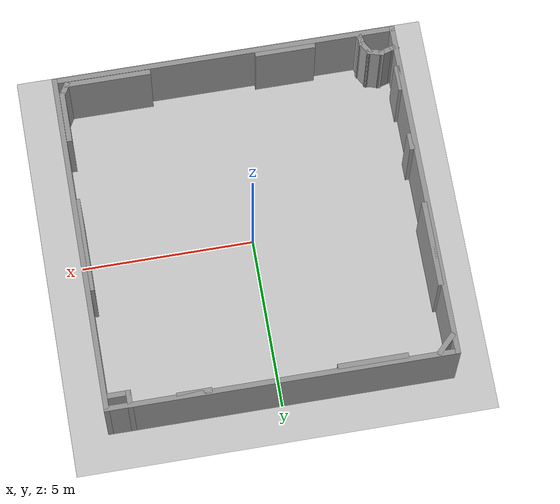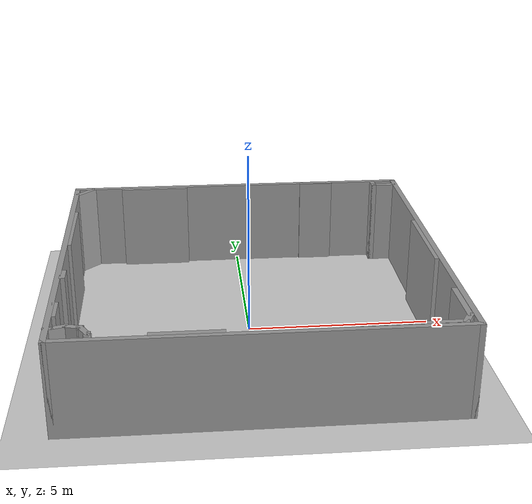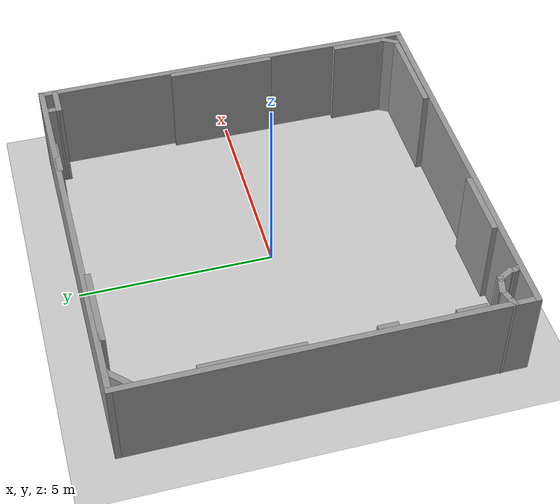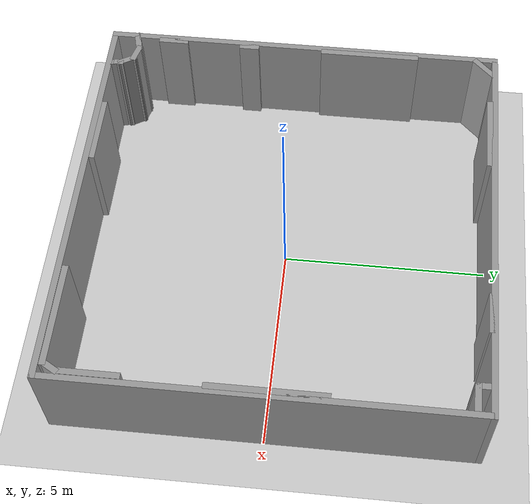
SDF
<sdf version="1.6">
 <world name="default">
  <light name="sun" type="directional">
   <pose>0 0 10 0 -0 0</pose>
   <diffuse>0.8 0.8 0.8 1</diffuse>
   <specular>0.2 0.2 0.2 1</specular>
   <attenuation>
    <range>1000</range>
    <constant>0.9</constant>
    <linear>0.01</linear>
    <quadratic>0.001</quadratic>
   </attenuation>
   <direction>-0.5 0.1 -0.9</direction>
  </light>
  <model name="ground_plane">
   <static>1</static>
   <link name="link">
    <collision name="collision">
     <geometry><plane><normal>0 0 1</normal><size>100 100</size></plane></geometry>
     <surface><friction><ode><mu>100</mu><mu2>50</mu2></ode></friction></surface>
    </collision>
    <visual name="visual">
     <cast_shadows>0</cast_shadows>
     <geometry><plane><normal>0 0 1</normal><size>100 100</size></plane></geometry>
     <material>
      <script><uri>file://media/materials/scripts/gazebo.material</uri><name>Gazebo/Grey</name></script>
     </material>
    </visual>
   </link>
  </model>
  <gravity>0 0 -9.8</gravity>
  <magnetic_field>6e-06 2.3e-05 -4.2e-05</magnetic_field>
  <atmosphere type="adiabatic"/>
  <physics name="default_physics" default="0" type="ode">
   <max_step_size>0.001</max_step_size>
   <real_time_factor>1</real_time_factor>
   <real_time_update_rate>1000</real_time_update_rate>
  </physics>
  <scene><ambient>0.4 0.4 0.4 1</ambient><background>0.7 0.7 0.7 1</background><shadows>1</shadows></scene>
  <spherical_coordinates>
   <surface_model>EARTH_WGS84</surface_model>
   <latitude_deg>0</latitude_deg>
   <longitude_deg>0</longitude_deg>
   <elevation>0</elevation>
   <heading_deg>0</heading_deg>
  </spherical_coordinates>
  <model name="10_4_ractangle">
   <link name="Wall_1">
    <collision name="Wall_1_Collision">
     <geometry><box><size>10 0.15 2.5</size></box></geometry>
     <pose>0 0 1.25 0 -0 0</pose>
    </collision>
    <visual name="Wall_1_Visual">
     <pose>0 0 1.25 0 -0 0</pose>
     <geometry><box><size>10 0.15 2.5</size></box></geometry>
     <material>
      <script><uri>file://media/materials/scripts/gazebo.material</uri><name>Gazebo/Grey</name></script>
      <ambient>1 1 1 1</ambient>
     </material>
     <meta><layer>0</layer></meta>
    </visual>
    <pose>-4.91657 0 0 0 -0 -1.5708</pose>
   </link>
   <link name="Wall_10">
    <collision name="Wall_10_Collision">
     <geometry><box><size>0.75 0.15 2.5</size></box></geometry>
     <pose>0 0 1.25 0 -0 0</pose>
    </collision>
    <visual name="Wall_10_Visual">
     <pose>0 0 1.25 0 -0 0</pose>
     <geometry><box><size>0.75 0.15 2.5</size></box></geometry>
     <material>
      <script><uri>file://media/materials/scripts/gazebo.material</uri><name>Gazebo/Grey</name></script>
      <ambient>1 1 1 1</ambient>
     </material>
     <meta><layer>0</layer></meta>
    </visual>
    <pose>4.56628 4.575 0 0 -0 0</pose>
   </link>
   <link name="Wall_12">
    <collision name="Wall_12_Collision">
     <geometry><box><size>0.25 0.15 2.5</size></box></geometry>
     <pose>0 0 1.25 0 -0 0</pose>
    </collision>
    <visual name="Wall_12_Visual">
     <pose>0 0 1.25 0 -0 0</pose>
     <geometry><box><size>0.25 0.15 2.5</size></box></geometry>
     <material>
      <script><uri>file://media/materials/scripts/gazebo.material</uri><name>Gazebo/Grey</name></script>
      <ambient>1 1 1 1</ambient>
     </material>
     <meta><layer>0</layer></meta>
    </visual>
    <pose>-4.86828 -4.33743 0 0 -0 0.261799</pose>
   </link>
   <link name="Wall_13">
    <collision name="Wall_13_Collision">
     <geometry><box><size>0.5 0.15 2.5</size></box></geometry>
     <pose>0 0 1.25 0 -0 0</pose>
    </collision>
    <visual name="Wall_13_Visual">
     <pose>0 0 1.25 0 -0 0</pose>
     <geometry><box><size>0.5 0.15 2.5</size></box></geometry>
     <material>
      <script><uri>file://media/materials/scripts/gazebo.material</uri><name>Gazebo/Grey</name></script>
      <ambient>1 1 1 1</ambient>
     </material>
     <meta><layer>0</layer></meta>
    </visual>
    <pose>-4.65094 -4.2792 0 0 -0 0.261799</pose>
   </link>
   <link name="Wall_14">
    <collision name="Wall_14_Collision">
     <geometry><box><size>0.5 0.15 2.5</size></box></geometry>
     <pose>0 0 1.25 0 -0 0</pose>
    </collision>
    <visual name="Wall_14_Visual">
     <pose>0 0 1.25 0 -0 0</pose>
     <geometry><box><size>0.5 0.15 2.5</size></box></geometry>
     <material>
      <script><uri>file://media/materials/scripts/gazebo.material</uri><name>Gazebo/Grey</name></script>
      <ambient>1 1 1 1</ambient>
     </material>
     <meta><layer>0</layer></meta>
    </visual>
    <pose>-4.31287 -4.2792 0 0 -0 -0.261799</pose>
   </link>
   <link name="Wall_15">
    <collision name="Wall_15_Collision">
     <geometry><box><size>0.15 0.15 2.5</size></box></geometry>
     <pose>0 0 1.25 0 -0 0</pose>
    </collision>
    <visual name="Wall_15_Visual">
     <pose>0 0 1.25 0 -0 0</pose>
     <geometry><box><size>0.15 0.15 2.5</size></box></geometry>
     <material>
      <script><uri>file://media/materials/scripts/gazebo.material</uri><name>Gazebo/Grey</name></script>
      <ambient>1 1 1 1</ambient>
     </material>
     <meta><layer>0</layer></meta>
    </visual>
    <pose>-4.14383 -4.32449 0 0 -0 0</pose>
   </link>
   <link name="Wall_16">
    <collision name="Wall_16_Collision">
     <geometry><box><size>0.5 0.15 2.5</size></box></geometry>
     <pose>0 0 1.25 0 -0 0</pose>
    </collision>
    <visual name="Wall_16_Visual">
     <pose>0 0 1.25 0 -0 0</pose>
     <geometry><box><size>0.5 0.15 2.5</size></box></geometry>
     <material>
      <script><uri>file://media/materials/scripts/gazebo.material</uri><name>Gazebo/Grey</name></script>
      <ambient>1 1 1 1</ambient>
     </material>
     <meta><layer>0</layer></meta>
    </visual>
    <pose>-4.05633 -4.47605 0 0 -0 -1.0472</pose>
   </link>
   <link name="Wall_18">
    <collision name="Wall_18_Collision">
     <geometry><box><size>0.25 0.15 2.5</size></box></geometry>
     <pose>0 0 1.25 0 -0 0</pose>
    </collision>
    <visual name="Wall_18_Visual">
     <pose>0 0 1.25 0 -0 0</pose>
     <geometry><box><size>0.25 0.15 2.5</size></box></geometry>
     <material>
      <script><uri>file://media/materials/scripts/gazebo.material</uri><name>Gazebo/Grey</name></script>
      <ambient>1 1 1 1</ambient>
     </material>
     <meta><layer>0</layer></meta>
    </visual>
    <pose>-3.96883 -4.6776 0 0 -0 -1.5708</pose>
   </link>
   <link name="Wall_2">
    <collision name="Wall_2_Collision">
     <geometry><box><size>10 0.15 2.5</size></box></geometry>
     <pose>0 0 1.25 0 -0 0</pose>
    </collision>
    <visual name="Wall_2_Visual">
     <pose>0 0 1.25 0 -0 0</pose>
     <geometry><box><size>10 0.15 2.5</size></box></geometry>
     <material>
      <script><uri>file://media/materials/scripts/gazebo.material</uri><name>Gazebo/Grey</name></script>
      <ambient>1 1 1 1</ambient>
     </material>
     <meta><layer>0</layer></meta>
    </visual>
    <pose>0.008427 -4.925 0 0 -0 0</pose>
   </link>
   <link name="Wall_20">
    <collision name="Wall_20_Collision">
     <geometry><box><size>0.25 0.15 2.5</size></box></geometry>
     <pose>0 0 1.25 0 -0 0</pose>
    </collision>
    <visual name="Wall_20_Visual">
     <pose>0 0 1.25 0 -0 0</pose>
     <geometry><box><size>0.25 0.15 2.5</size></box></geometry>
     <material>
      <script><uri>file://media/materials/scripts/gazebo.material</uri><name>Gazebo/Grey</name></script>
      <ambient>1 1 1 1</ambient>
     </material>
     <meta><layer>0</layer></meta>
    </visual>
    <pose>-3.96883 -4.6776 0 0 -0 -1.5708</pose>
   </link>
   <link name="Wall_21">
    <collision name="Wall_21_Collision">
     <geometry><box><size>0.25 0.15 2.5</size></box></geometry>
     <pose>0 0 1.25 0 -0 0</pose>
    </collision>
    <visual name="Wall_21_Visual">
     <pose>0 0 1.25 0 -0 0</pose>
     <geometry><box><size>0.25 0.15 2.5</size></box></geometry>
     <material>
      <script><uri>file://media/materials/scripts/gazebo.material</uri><name>Gazebo/Grey</name></script>
      <ambient>1 1 1 1</ambient>
     </material>
     <meta><layer>0</layer></meta>
    </visual>
    <pose>-3.95589 -4.7759 0 0 -0 -1.309</pose>
   </link>
   <link name="Wall_23">
    <collision name="Wall_23_Collision">
     <geometry><box><size>2.75 0.15 2.5</size></box></geometry>
     <pose>0 0 1.25 0 -0 0</pose>
    </collision>
    <visual name="Wall_23_Visual">
     <pose>0 0 1.25 0 -0 0</pose>
     <geometry><box><size>2.75 0.15 2.5</size></box></geometry>
     <material>
      <script><uri>file://media/materials/scripts/gazebo.material</uri><name>Gazebo/Grey</name></script>
      <ambient>1 1 1 1</ambient>
     </material>
     <meta><layer>0</layer></meta>
    </visual>
    <pose>4.82141 0.109148 0 0 -0 -1.5708</pose>
   </link>
   <link name="Wall_25">
    <collision name="Wall_25_Collision">
     <geometry><box><size>1 0.15 2.5</size></box></geometry>
     <pose>0 0 1.25 0 -0 0</pose>
    </collision>
    <visual name="Wall_25_Visual">
     <pose>0 0 1.25 0 -0 0</pose>
     <geometry><box><size>1 0.15 2.5</size></box></geometry>
     <material>
      <script><uri>file://media/materials/scripts/gazebo.material</uri><name>Gazebo/Grey</name></script>
      <ambient>1 1 1 1</ambient>
     </material>
     <meta><layer>0</layer></meta>
    </visual>
    <pose>2.47074 4.87874 0 0 -0 0</pose>
   </link>
   <link name="Wall_27">
    <collision name="Wall_27_Collision">
     <geometry><box><size>2 0.15 2.5</size></box></geometry>
     <pose>0 0 1.25 0 -0 0</pose>
    </collision>
    <visual name="Wall_27_Visual">
     <pose>0 0 1.25 0 -0 0</pose>
     <geometry><box><size>2 0.15 2.5</size></box></geometry>
     <material>
      <script><uri>file://media/materials/scripts/gazebo.material</uri><name>Gazebo/Grey</name></script>
      <ambient>1 1 1 1</ambient>
     </material>
     <meta><layer>0</layer></meta>
    </visual>
    <pose>-2.55748 4.80935 0 0 -0 0</pose>
   </link>
   <link name="Wall_29">
    <collision name="Wall_29_Collision">
     <geometry><box><size>2.5 0.15 2.5</size></box></geometry>
     <pose>0 0 1.25 0 -0 0</pose>
    </collision>
    <visual name="Wall_29_Visual">
     <pose>0 0 1.25 0 -0 0</pose>
     <geometry><box><size>2.5 0.15 2.5</size></box></geometry>
     <material>
      <script><uri>file://media/materials/scripts/gazebo.material</uri><name>Gazebo/Grey</name></script>
      <ambient>1 1 1 1</ambient>
     </material>
     <meta><layer>0</layer></meta>
    </visual>
    <pose>-4.82405 1.71451 0 0 -0 -1.5708</pose>
   </link>
   <link name="Wall_3">
    <collision name="Wall_3_Collision">
     <geometry><box><size>10 0.15 2.5</size></box></geometry>
     <pose>0 0 1.25 0 -0 0</pose>
    </collision>
    <visual name="Wall_3_Visual">
     <pose>0 0 1.25 0 -0 0</pose>
     <geometry><box><size>10 0.15 2.5</size></box></geometry>
     <material>
      <script><uri>file://media/materials/scripts/gazebo.material</uri><name>Gazebo/Grey</name></script>
      <ambient>1 1 1 1</ambient>
     </material>
     <meta><layer>0</layer></meta>
    </visual>
    <pose>4.93343 0 0 0 -0 1.5708</pose>
   </link>
   <link name="Wall_31">
    <collision name="Wall_31_Collision">
     <geometry><box><size>0.5 0.15 2.5</size></box></geometry>
     <pose>0 0 1.25 0 -0 0</pose>
    </collision>
    <visual name="Wall_31_Visual">
     <pose>0 0 1.25 0 -0 0</pose>
     <geometry><box><size>0.5 0.15 2.5</size></box></geometry>
     <material>
      <script><uri>file://media/materials/scripts/gazebo.material</uri><name>Gazebo/Grey</name></script>
      <ambient>1 1 1 1</ambient>
     </material>
     <meta><layer>0</layer></meta>
    </visual>
    <pose>-4.80092 -1.40274 0 0 -0 -1.5708</pose>
   </link>
   <link name="Wall_33">
    <collision name="Wall_33_Collision">
     <geometry><box><size>0.75 0.15 2.5</size></box></geometry>
     <pose>0 0 1.25 0 -0 0</pose>
    </collision>
    <visual name="Wall_33_Visual">
     <pose>0 0 1.25 0 -0 0</pose>
     <geometry><box><size>0.75 0.15 2.5</size></box></geometry>
     <material>
      <script><uri>file://media/materials/scripts/gazebo.material</uri><name>Gazebo/Grey</name></script>
      <ambient>1 1 1 1</ambient>
     </material>
     <meta><layer>0</layer></meta>
    </visual>
    <pose>-4.82405 -3.37819 0 0 -0 -1.5708</pose>
   </link>
   <link name="Wall_35">
    <collision name="Wall_35_Collision">
     <geometry><box><size>1.75 0.15 2.5</size></box></geometry>
     <pose>0 0 1.25 0 -0 0</pose>
    </collision>
    <visual name="Wall_35_Visual">
     <pose>0 0 1.25 0 -0 0</pose>
     <geometry><box><size>1.75 0.15 2.5</size></box></geometry>
     <material>
      <script><uri>file://media/materials/scripts/gazebo.material</uri><name>Gazebo/Grey</name></script>
      <ambient>1 1 1 1</ambient>
     </material>
     <meta><layer>0</layer></meta>
    </visual>
    <pose>-1.75725 -4.78986 0 0 -0 0</pose>
   </link>
   <link name="Wall_37">
    <collision name="Wall_37_Collision">
     <geometry><box><size>2.5 0.15 2.5</size></box></geometry>
     <pose>0 0 1.25 0 -0 0</pose>
    </collision>
    <visual name="Wall_37_Visual">
     <pose>0 0 1.25 0 -0 0</pose>
     <geometry><box><size>2.5 0.15 2.5</size></box></geometry>
     <material>
      <script><uri>file://media/materials/scripts/gazebo.material</uri><name>Gazebo/Grey</name></script>
      <ambient>1 1 1 1</ambient>
     </material>
     <meta><layer>0</layer></meta>
    </visual>
    <pose>3.42892 -4.76673 0 0 -0 0</pose>
   </link>
   <link name="Wall_38">
    <collision name="Wall_38_Collision">
     <geometry><box><size>0.5 0.15 2.5</size></box></geometry>
     <pose>0 0 1.25 0 -0 0</pose>
    </collision>
    <visual name="Wall_38_Visual">
     <pose>0 0 1.25 0 -0 0</pose>
     <geometry><box><size>0.5 0.15 2.5</size></box></geometry>
     <material>
      <script><uri>file://media/materials/scripts/gazebo.material</uri><name>Gazebo/Grey</name></script>
      <ambient>1 1 1 1</ambient>
     </material>
     <meta><layer>0</layer></meta>
    </visual>
    <pose>4.69142 -4.61517 0 0 -0 1.0472</pose>
   </link>
   <link name="Wall_39">
    <collision name="Wall_39_Collision">
     <geometry><box><size>1.5 0.15 2.5</size></box></geometry>
     <pose>0 0 1.25 0 -0 0</pose>
    </collision>
    <visual name="Wall_39_Visual">
     <pose>0 0 1.25 0 -0 0</pose>
     <geometry><box><size>1.5 0.15 2.5</size></box></geometry>
     <material>
      <script><uri>file://media/materials/scripts/gazebo.material</uri><name>Gazebo/Grey</name></script>
      <ambient>1 1 1 1</ambient>
     </material>
     <meta><layer>0</layer></meta>
    </visual>
    <pose>4.77892 -3.78862 0 0 -0 1.5708</pose>
   </link>
   <link name="Wall_4">
    <collision name="Wall_4_Collision">
     <geometry><box><size>10 0.15 2.5</size></box></geometry>
     <pose>0 0 1.25 0 -0 0</pose>
    </collision>
    <visual name="Wall_4_Visual">
     <pose>0 0 1.25 0 -0 0</pose>
     <geometry><box><size>10 0.15 2.5</size></box></geometry>
     <material>
      <script><uri>file://media/materials/scripts/gazebo.material</uri><name>Gazebo/Grey</name></script>
      <ambient>1 1 1 1</ambient>
     </material>
     <meta><layer>0</layer></meta>
    </visual>
    <pose>0.008427 4.925 0 0 -0 3.14159</pose>
   </link>
   <link name="Wall_7">
    <collision name="Wall_7_Collision">
     <geometry><box><size>0.75 0.15 2.5</size></box></geometry>
     <pose>0 0 1.25 0 -0 0</pose>
    </collision>
    <visual name="Wall_7_Visual">
     <pose>0 0 1.25 0 -0 0</pose>
     <geometry><box><size>0.75 0.15 2.5</size></box></geometry>
     <material>
      <script><uri>file://media/materials/scripts/gazebo.material</uri><name>Gazebo/Grey</name></script>
      <ambient>1 1 1 1</ambient>
     </material>
     <meta><layer>0</layer></meta>
    </visual>
    <pose>-4.64296 4.66661 0 0 -0 -2.35619</pose>
   </link>
   <link name="Wall_9">
    <collision name="Wall_9_Collision">
     <geometry><box><size>0.5 0.15 2.5</size></box></geometry>
     <pose>0 0 1.25 0 -0 0</pose>
    </collision>
    <visual name="Wall_9_Visual">
     <pose>0 0 1.25 0 -0 0</pose>
     <geometry><box><size>0.5 0.15 2.5</size></box></geometry>
     <material>
      <script><uri>file://media/materials/scripts/gazebo.material</uri><name>Gazebo/Grey</name></script>
      <ambient>1 1 1 1</ambient>
     </material>
     <meta><layer>0</layer></meta>
    </visual>
    <pose>4.26628 4.75 0 0 -0 -1.5708</pose>
   </link>
   <static>1</static>
  </model>
 </world>
</sdf>
